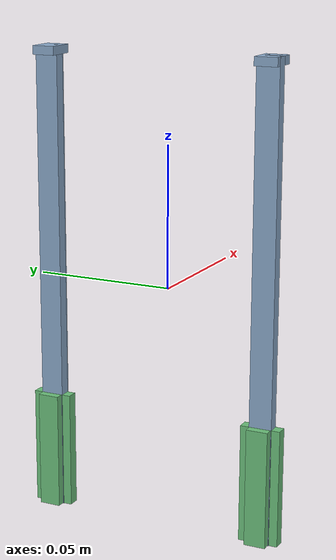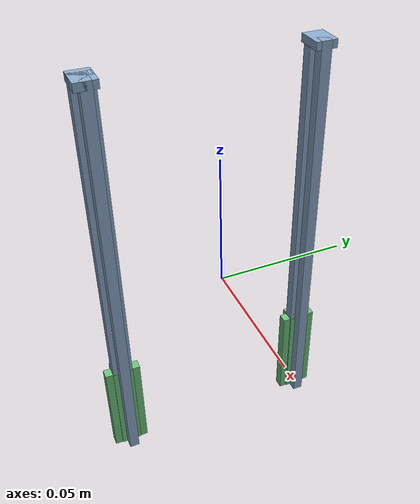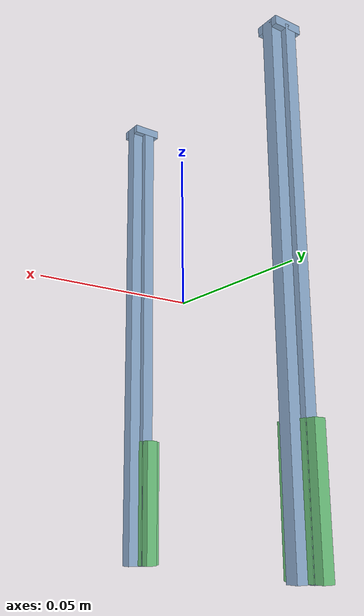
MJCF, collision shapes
<?xml version="1.0" ?>
<mujoco model="lift_pslide_VB">
  <compiler angle="radian" meshdir="assets" autolimits="true"/>
  <option timestep="0.00025" integrator="implicitfast" cone="elliptic" impratio="10" gravity="0 0 -9.81"/>
  <visual>
    <headlight ambient="0.5 0.5 0.5" diffuse="0.6 0.6 0.6" specular="0.2 0.2 0.2"/>
    <global offwidth="1280" offheight="960" azimuth="150" elevation="-20"/>
  </visual>
  <default>
    <geom solref="0.001 1.0" solimp="0.99 0.9999 0.0001" friction="0.3 0.005 0.0001" condim="4" density="0"/>
  </default>
  <asset>
    <material name="base" rgba="0.54 0.66 0.79 1"/>
    <material name="mover" rgba="0.42 0.75 0.48 1"/>
    <mesh name="tower" file="vb_tower.stl"/>
    <mesh name="mv_P2" file="vb_mv_P2.stl"/>
    <mesh name="mv_P3" file="vb_mv_P3.stl"/>
    <mesh name="mv_P4" file="vb_mv_P4.stl"/>
  </asset>
  <worldbody>
    <light pos="0.2 -0.3 0.6" dir="-0.3 0.5 -1" directional="true" diffuse="0.5 0.5 0.5"/>
    <camera name="iso" pos="0.34 -0.40 0.30" xyaxes="0.76 0.65 0 -0.32 0.37 0.87"/>
    <body name="base" pos="0 0 0">
      <geom name="tower_vis" type="mesh" mesh="tower" material="base" contype="0" conaffinity="0" group="2"/>
      <inertial pos="-0.043593676 0.000006666 -0.010181348" mass="0.526553748" fullinertia="0.003373054322 0.002701582504 0.002024453138 -0.000000026919 -0.000008311804 -0.000000302476"/>
      <geom name="rail_c0" type="box" pos="-0.006000000 -0.040000000 0.000000000" size="0.002000000 0.002000000 0.082500000" material="base" contype="1" conaffinity="1" group="3"/>
      <geom name="rail_c1" type="box" pos="-0.010000000 -0.040000000 0.000000000" size="0.002000000 0.004000000 0.082500000" material="base" contype="1" conaffinity="1" group="3"/>
      <geom name="rail_c2" type="box" pos="-0.009000000 -0.040000000 0.081000000" size="0.005000000 0.004000000 0.001500000" material="base" contype="1" conaffinity="1" group="3"/>
      <geom name="rail_c3" type="box" pos="-0.006000000 0.040000000 0.000000000" size="0.002000000 0.002000000 0.082500000" material="base" contype="1" conaffinity="1" group="3"/>
      <geom name="rail_c4" type="box" pos="-0.010000000 0.040000000 0.000000000" size="0.002000000 0.004000000 0.082500000" material="base" contype="1" conaffinity="1" group="3"/>
      <geom name="rail_c5" type="box" pos="-0.009000000 0.040000000 0.081000000" size="0.005000000 0.004000000 0.001500000" material="base" contype="1" conaffinity="1" group="3"/>
    </body>
    <body name="mover" pos="0 0 0">
      <freejoint name="mover_free"/>
      <geom name="mv_P2_vis" type="mesh" mesh="mv_P2" material="mover" contype="0" conaffinity="0" group="2"/>
      <geom name="mv_P3_vis" type="mesh" mesh="mv_P3" material="mover" contype="0" conaffinity="0" group="2"/>
      <geom name="mv_P4_vis" type="mesh" mesh="mv_P4" material="mover" contype="0" conaffinity="0" group="2"/>
      <inertial pos="-0.028532046 0.002623794 0.007710620" mass="0.659213585" fullinertia="0.000760016 0.000529873 0.000281511 -0.000001058 -0.000003108 -0.000028290"/>
      <geom name="carr_c0" type="box" pos="-0.013500000 -0.040000000 -0.061500000" size="0.001500000 0.003800000 0.020800000" material="mover" contype="1" conaffinity="1" group="3"/>
      <geom name="carr_c1" type="box" pos="-0.010000000 -0.034425000 -0.061500000" size="0.002000000 0.001500000 0.020800000" material="mover" contype="1" conaffinity="1" group="3"/>
      <geom name="carr_c2" type="box" pos="-0.010000000 -0.045575000 -0.061500000" size="0.002000000 0.001500000 0.020800000" material="mover" contype="1" conaffinity="1" group="3"/>
      <geom name="carr_c3" type="box" pos="-0.007775000 -0.036925000 -0.061500000" size="0.000150000 0.001000000 0.020800000" material="mover" contype="1" conaffinity="1" group="3"/>
      <geom name="carr_c4" type="box" pos="-0.007775000 -0.043075000 -0.061500000" size="0.000150000 0.001000000 0.020800000" material="mover" contype="1" conaffinity="1" group="3"/>
      <geom name="carr_c5" type="box" pos="-0.013500000 0.040000000 -0.061500000" size="0.001500000 0.003800000 0.020800000" material="mover" contype="1" conaffinity="1" group="3"/>
      <geom name="carr_c6" type="box" pos="-0.010000000 0.045575000 -0.061500000" size="0.002000000 0.001500000 0.020800000" material="mover" contype="1" conaffinity="1" group="3"/>
      <geom name="carr_c7" type="box" pos="-0.010000000 0.034425000 -0.061500000" size="0.002000000 0.001500000 0.020800000" material="mover" contype="1" conaffinity="1" group="3"/>
      <geom name="carr_c8" type="box" pos="-0.007775000 0.043075000 -0.061500000" size="0.000150000 0.001000000 0.020800000" material="mover" contype="1" conaffinity="1" group="3"/>
      <geom name="carr_c9" type="box" pos="-0.007775000 0.036925000 -0.061500000" size="0.000150000 0.001000000 0.020800000" material="mover" contype="1" conaffinity="1" group="3"/>
    </body>
  </worldbody>
</mujoco>
